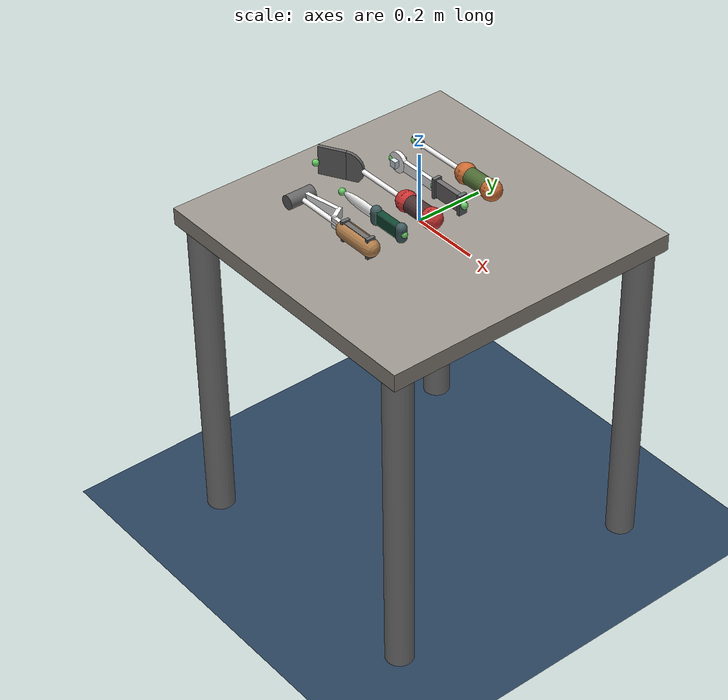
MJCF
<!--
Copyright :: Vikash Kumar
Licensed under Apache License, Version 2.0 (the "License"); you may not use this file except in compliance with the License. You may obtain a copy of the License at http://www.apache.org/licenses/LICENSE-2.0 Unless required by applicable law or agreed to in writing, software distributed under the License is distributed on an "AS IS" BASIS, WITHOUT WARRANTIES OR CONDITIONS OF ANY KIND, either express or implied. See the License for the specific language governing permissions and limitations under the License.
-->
<mujoco model='ADROIT-knife(v1.5)'>

    <default>
        <default class="board">
            <geom type="box" material="MatWood" />
            <general user="0 1 0.03 0.0939711 0.513477 0.0358776 1.23598 8.40409 0.485031 6.04244 1.02187 0.175297 0.121642 0 0 0" />
        </default>
    </default>

    <!-- ======= WORLD ======= -->
    <worldbody>
        <light directional='false' castshadow='false' diffuse='.7 .7 .7' specular='0.03 0.03 0.03' pos='-1 -1.0 4.0' dir='1 1.0 -4'/>
        <geom name='ground' size="1.5 1.5 0.25" pos="0 0 -1" type="plane" contype="1" conaffinity="0" material="groundplane" />
        <camera name="fixed" pos="0 -0.7 0.7" quat="0.92388 0.382683 0 0" />
        <!-- Camera for the VIL paper -->
        <camera name="vil_camera" pos="0 -1.2 1.2" quat="0.92388 0.382683 0 0" />
        <camera name="left_cross" pos="-0.8 -0.6 0.8" euler="0.785 -0.785 -0.49" />
        <camera name="right_cross" pos="-0.8 0.6 0.8" euler="-0.785 -0.785 3.53" />

        <!-- ======= TABLE ======= -->
        <body name="table">
            <!-- Plane has better contacts -->
            <geom size="0.45 0.45 0.025" pos="0 0 -0.025" type="box" material="tablecube" />
            <geom size="0.04 0.5" pos="0.4 0.4 -0.501" quat="0 1 0 0" type="cylinder" contype="0" conaffinity="0" />
            <geom size="0.04 0.5" pos="-0.4 0.4 -0.501" quat="0 1 0 0" type="cylinder" contype="0" conaffinity="0" />
            <geom size="0.04 0.5" pos="0.4 -0.4 -0.501" quat="0 1 0 0" type="cylinder" contype="0" conaffinity="0" />
            <geom size="0.04 0.5" pos="-0.4 -0.4 -0.501" quat="0 1 0 0" type="cylinder" contype="0" conaffinity="0" />
        </body>

        <!-- ======= MOCAP ======= -->

        <!-- ======= HAND ======= -->
        <body name="forearm" pos="0.9 -0.18 0.2" euler="-1.57 -1.57 3.14">
            <inertial pos="0.001 -0.002 0.29" quat="0.982037 -0.0160006 0 -0.188007" mass="4" diaginertia="0.01 0.01 0.0075" />
            <joint name="ARTx" pos="0 0 0" axis="1 0 0" type="slide" range="-0.25 0.25" damping="20" />

            <!-- ======= Adroit ======= -->
        </body>

        <!-- ======= DESTINATION ======= -->

        <!-- Knife -->
        <body pos="0 -0.1 0.035" quat="0.707388 0.706825 0 0" name='knife'>
            <include file="knife.xml"/>
        </body>

        <!-- Spatuala -->
        <body pos="0 0 0.035" quat="0.707388 0.706825 0 0" name='spatula'>
            <include file="spatula.xml"/>
        </body>

        <!-- Ratchet -->
        <body pos="0 0.1 0.035" quat="0.707388 0.706825 0 0" name='ratchet'>
            <include file="ratchet.xml"/>
        </body>

        <!-- screw driver -->
        <body pos="0 0.2 0.035" quat="0.707388 0.706825 0 0" name='screwDriver'>
            <include file="screwDriver.xml"/>
        </body>

        <!-- turner -->
        <body pos="0 -0.2 0.035" quat="0.707388 0.706825 0 0" name='turner'>
            <include file="turner.xml"/>
        </body>

        <!-- ======= Hammer ======= -->
        <body name="hammer" pos="0 -0.2 0.035" quat="0.707388 0.706825 0 0">
            <geom name="handle" size="0.025 0.05" quat="0.707388 0 0.706825 0" type="capsule" condim="4" material="MatWood" />
            <geom name="neck" size="0.007 0.085" pos="-0.14 0 0" quat="0.707388 0 0.706825 0" type="capsule" condim="4" rgba="1 1 1 1" />
            <geom name="head" size="0.02 0.04" pos="-0.24 0 0" type="cylinder" condim="4" rgba="0.4 0.4 0.4 1" />
        </body>

        <!-- pan -->

    </worldbody>

    <actuator>
        <general name="A_ARTx" joint="ARTx" ctrlrange="-0.25 0.25" biastype="affine" gainprm="500 0 0" biasprm="0 -200 0" />
    </actuator>
    <include file='MIX_env_assets.xml'/>
</mujoco>

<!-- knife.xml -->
<mujocoinclude>
        <!-- ======= Knife ======= -->
        <inertial pos="-0.11025 0 0" quat="0.50001 0.49999 0.49999 0.50001" mass="0.253442" diaginertia="0.00349644 0.00345287 8.947e-05"/>
        <site name="tool" pos="-0.19 0 0" size="0.01" group="4" rgba="0.4 0.8 0.4 1" />
        <geom name="k_handle" size="0.0105 0.018 0.053" quat="0.707388 0 0.706825 0" type="box" condim="4" rgba="0.06 0.28 0.2 1"/>
        <geom name="k_handleT" size="0.0155 0.013" pos="-.05 0 0" euler="1.57 0 0" type="capsule" condim="4" rgba="0.25 0.36 0.37 1"/>
        <geom name="k_handleB" size="0.0155 0.013" pos=".05 0 0" euler="1.57 0 0" type="capsule" condim="4" rgba="0.25 0.36 0.37 1"/>

        <geom name="k_neck" size="0.009 0.018 0.083" pos="-0.10 0 0" quat="0.707388 0 0.706825 0" type="ellipsoid" condim="4" rgba="1 1 1 1" />
        <site name="keypt1" pos="-0.19 0 0" size="0.01" rgba="0.4 0.8 0.4 1" />
        <site name="keypt2" pos="-0.06 0 0" size="0.01" rgba="0.4 0.8 0.4 1" />
        <site name="keypt3" pos="0.06 0 0" size="0.01" rgba="0.4 0.8 0.4 1" />
</mujocoinclude>

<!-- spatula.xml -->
<mujocoinclude>
        <!-- ======= Spatula ======= -->
        <inertial pos="-0.11025 0 0" quat="0.50001 0.49999 0.49999 0.50001" mass="0.253442" diaginertia="0.00349644 0.00345287 8.947e-05"/>
        <site name="tool" pos="-0.34 0 0.07" size="0.01" group="4" rgba="0.4 0.8 0.4 1" />
        <geom name="s_handle" size="0.025 0.05" quat="0.707388 0 0.706825 0" type="capsule" condim="4" rgba="0.3 0.2 0.2 1"/>
        <geom name="s_handleB" size="0.030 0.0005" pos=".05 0 0" quat="0.707388 0 0.706825 0" type="capsule" condim="4" rgba="0.8 0.2 0.2 1"/>
        <geom name="s_handleT" size="0.030 0.0005" pos="-.05 0 0" quat="0.707388 0 0.706825 0" type="capsule" condim="4" rgba="0.8 0.2 0.2 1"/>

        <geom name="s_neck" size="0.007 0.085" pos="-0.14 0 0" quat="0.707388 0 0.706825 0" type="capsule" condim="4" rgba="1 1 1 1" />
        <geom name="s_head" size="0.05 0.005" pos="-0.27 0 .022" type="cylinder" condim="4" rgba="0.4 0.4 0.4 1" euler="0 .5 0"/>
        <geom name="s_heahB" size="0.04 0.05 0.0052" pos="-0.305 0 .041" type="box" condim="4" rgba="0.4 0.4 0.4 1" euler="0 .5 0"/>
        <site name="keypt1" pos="-0.34 0 0.07" size="0.01" rgba="0.4 0.8 0.4 1" />
        <site name="keypt2" pos="-0.07 0 0" size="0.01" rgba="0.4 0.8 0.4 1" />
        <site name="keypt3" pos="0.06 0 0" size="0.01" rgba="0.4 0.8 0.4 1" />
</mujocoinclude>

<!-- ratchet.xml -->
<mujocoinclude>
    <inertial pos="-0.11025 0 0" quat="0.50001 0.49999 0.49999 0.50001" mass="0.253442" diaginertia="0.00349644 0.00345287 8.947e-05"/>
    <site name="tool" pos="-0.23 0 0" size="0.01" group="4" rgba="0.4 0.8 0.4 1" />
    <geom name="r_handle" size="0.0075 0.025 0.05" quat="0.707388 0 0.706825 0" type="box" condim="4" rgba="0.43 0.42 0.42 1"/>
    <geom name="r_handleB" size="0.0125 0.030 0.005" pos=".05 0 0" quat="0.707388 0 0.706825 0" type="box" condim="4" rgba="0.4 0.42 0.42 1"/>
    <geom name="r_handleT" size="0.0125 0.030 0.005" pos="-.05 0 0" quat="0.707388 0 0.706825 0" type="box" condim="4" rgba="0.4 0.42 0.42 1"/>

    <geom name="r_neck" size="0.006 0.015 0.085" pos="-0.14 0 0" quat="0.707388 0 0.706825 0" type="box" condim="4" rgba="1 1 1 1" />
    <geom name="r_head" size="0.03 0.006" pos="-0.205 0 0" type="cylinder" condim="4" rgba="1 1 1 1" euler="0 0 0"/>
    <geom name="r_head2" size="0.01 0.01 0.02" pos="-0.205 0 0" type="box" condim="4" rgba=".84 .89 .92 1" euler="0 0 0"/>
    <site name="keypt1" pos="-0.23 0 0" size="0.01" rgba="0.4 0.8 0.4 1" />
    <site name="keypt2" pos="-0.06 0 0" size="0.01" rgba="0.4 0.8 0.4 1" />
    <site name="keypt3" pos="0.06 0 0" size="0.01" rgba="0.4 0.8 0.4 1" />
</mujocoinclude>

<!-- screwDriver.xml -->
<mujocoinclude>
        <inertial pos="-0.11025 0 0" quat="0.50001 0.49999 0.49999 0.50001" mass="0.253442" diaginertia="0.00349644 0.00345287 8.947e-05"/>
        <site name="tool" pos="-0.26 0 0.0" size="0.01" group="4" rgba="0.4 0.8 0.4 1" />
        <geom name="sd_handle" size="0.025 0.05" quat="0.707388 0 0.706825 0" type="capsule" condim="4" rgba="0.3 0.42 0.2 1"/>
        <geom name="sd_handleB" size="0.030 0.0005" pos=".05 0 0" quat="0.707388 0 0.706825 0" type="capsule" condim="4" rgba="0.8 0.42 0.2 1"/>
        <geom name="sd_handleT" size="0.030 0.0005" pos="-.05 0 0" quat="0.707388 0 0.706825 0" type="capsule" condim="4" rgba="0.8 0.42 0.2 1"/>

        <geom name="sd_neck" size="0.007 0.085" pos="-0.14 0 0" quat="0.707388 0 0.706825 0" type="capsule" condim="4" rgba="1 1 1 1" />
        <geom name="sd_head" size="0.02 0.01 0.005" pos="-0.245 0 0" type="box" condim="4" rgba="0.4 0.4 0.4 1" euler="0 0 0"/>
        <site name="keypt1" pos="-0.26 0 0.0" size="0.01" rgba="0.4 0.8 0.4 1" />
        <site name="keypt2" pos="-0.06 0 0" size="0.01" rgba="0.4 0.8 0.4 1" />
        <site name="keypt3" pos="0.06 0 0" size="0.01" rgba="0.4 0.8 0.4 1" />
</mujocoinclude>

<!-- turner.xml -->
<mujocoinclude>
        <inertial pos="-0.11025 0 0" quat="0.50001 0.49999 0.49999 0.50001" mass="0.253442" diaginertia="0.00349644 0.00345287 8.947e-05"/>
        <site name="tool" pos="-0.23 0 -0.01" size="0.01" group="4" rgba="0.4 0.8 0.4 1" />
        <geom name="t_handle" size="0.0075 0.025 0.05" quat="0.707388 0 0.706825 0" type="box" condim="4" rgba="0.43 0.42 0.42 1"/>
        <geom name="t_handleB" size="0.0125 0.030 0.005" pos=".05 0 0" quat="0.707388 0 0.706825 0" type="box" condim="4" rgba="0.4 0.42 0.42 1"/>
        <geom name="t_handleT" size="0.0125 0.030 0.005" pos="-.05 0 0" quat="0.707388 0 0.706825 0" type="box" condim="4" rgba="0.4 0.42 0.42 1"/>

        <geom name="t_neckL" size="0.006 0.015 0.025" pos="-0.075 0 0" quat="0.707388 0 0.706825 0" type="box" condim="4" rgba="1 1 1 1" />
        <geom name="t_neck" size="0.006 0.015 0.025" pos="-0.108 0 -.018" euler="0 .57 0" type="box" condim="4" rgba="1 1 1 1" />
        <geom name="t_head" size="0.006 0.015 0.055" pos="-0.175 0 -.0225" euler="0 -1.4 0" type="box" condim="4" rgba="1 1 1 1" />
        <site name="keypt1" pos="-0.23 0 0.0" size="0.01" rgba="0.4 0.8 0.4 1" />
        <site name="keypt2" pos="-0.06 0 0" size="0.01" rgba="0.4 0.8 0.4 1" />
        <site name="keypt3" pos="0.06 0 0" size="0.01" rgba="0.4 0.8 0.4 1" />
</mujocoinclude>

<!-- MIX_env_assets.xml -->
<mujocoinclude>
 	<compiler angle="radian" meshdir='../../../sims/Adroit/resources/meshes/' texturedir='../../../sims/Adroit/resources/textures/' />
    <option apirate="200" iterations="20" noslip_iterations="20"/>
    <size njmax="500" nconmax="100" nstack="600000" nuser_body="9" nuser_jnt="1" nuser_site="1" nuser_tendon="1" nuser_actuator="16" nuser_sensor="1" />
    <visual>
        <global offwidth="3024" offheight="1680" />
        <quality shadowsize="4096" offsamples="8" />
        <map force="0.1" fogend="5" />
    </visual>
    <default class="main">
        <mesh scale="0.001 0.001 0.001" />
        <joint limited="true" margin="0.01" armature="0.001" damping="0.05" frictionloss="0.001" />
        <geom friction="1 0.5 0.01" margin="0.0005" />
        <site size="0.005 0 0" rgba="0.4 0.9 0.4 1" />
        <tendon limited="true" />
        <general ctrllimited="true" ctrlrange="-1 1" user="0 1 0.03 0.0939711 0.513477 0.0358776 1.23598 8.40409 0.485031 6.04244 1.02187 0.175297 0.121642 0 0 0" />
        <default class="D_Touch">
            <site size="0.009 0.004 0.013" group="4" type="box" rgba="0.8 0.8 0.8 0.15" />
            <general user="0 1 0.03 0.0939711 0.513477 0.0358776 1.23598 8.40409 0.485031 6.04244 1.02187 0.175297 0.121642 0 0 0" />
        </default>
        <default class="DC_Hand">
            <geom conaffinity="0" group="4" material="MatColl" />
            <general user="0 1 0.03 0.0939711 0.513477 0.0358776 1.23598 8.40409 0.485031 6.04244 1.02187 0.175297 0.121642 0 0 0" />
        </default>
        <default class="D_Vizual">
            <geom type="mesh" contype="0" conaffinity="0" group="1" material="MatViz" />
            <general user="0 1 0.03 0.0939711 0.513477 0.0358776 1.23598 8.40409 0.485031 6.04244 1.02187 0.175297 0.121642 0 0 0" />
        </default>
        <default class="free">
            <joint type="free" limited="false" armature="0" damping="0" />
            <general user="0 1 0.03 0.0939711 0.513477 0.0358776 1.23598 8.40409 0.485031 6.04244 1.02187 0.175297 0.121642 0 0 0" />
        </default>
    </default>
    <asset>
        <texture type="cube" name="texgeom" builtin="flat" mark="cross" rgb1="0.3 0.6 0.5" rgb2="0.3 0.6 0.5" width="127" height="762" />
        <texture type="cube" name="wood" file="wood.png" />
        <texture type="2d" name="wood2d" file="wood.png" />
        <texture type="cube" name="square" file="square.png" />
        <texture type="cube" name="foil" file="silverRaw.png" />
        <texture type="cube" name="woodb" file="woodb.png" />
        <texture type="2d" name="groundplane" builtin="checker" rgb1="0.2 0.3 0.4" rgb2="0.1 0.2 0.3" width="100" height="100" />
        <texture type="2d" name="marble2d" file="marble.png" />
        <texture type="cube" name="marblecube" file="marble.png" />
        <material name="MatColl" specular="1" shininess="0.3" reflectance="0.5" rgba="0.4 0.5 0.6 1" />
        <material name="MatViz" specular="0.75" shininess="0.1" reflectance="0.5" rgba="0.9 0.7 0.5 1" />
        <material name="MatGnd" specular="0.3" shininess="0.3" reflectance="0.3" rgba="0.5 0.55 0.5 1" />
        <material name="object" texture="texgeom" />
        <material name="groundplane" texture="groundplane" texrepeat="10 10" />
        <material name="table2d" texture="marble2d" reflectance="0.3" rgba="0.8 0.8 0.8 1" />
        <material name="tablecube" texture="marblecube" rgba="0.8 0.8 0.8 1" />
        <material name="MatFoil" texture="foil" specular="1" shininess="0.3" rgba="0.9 0.9 0.9 1" />
        <material name="MatPlane" specular="0.3" shininess="0.3" rgba="0.3 0.3 0.2 1" />
        <material name="MatWood" texture="wood" texrepeat="3 3" specular="0.4" shininess="0.1" />
        <material name="MatSquare" texture="square" specular="1" shininess="0.6" rgba="0.8 0.8 0.8 1" />
        <material name="MatWoodR" texture="wood" specular="1" shininess="0.3" rgba="1 0.5 0.5 1" />
        <material name="MatWoodG" texture="wood" specular="1" shininess="0.3" rgba="0.2 1 0.2 1" />
        <material name="MatWoodB" texture="woodb" specular="1" shininess="0.3" />
        <mesh name="forearm_simple" file="forearm_simple.stl" scale="1 1 1"/>
        <mesh name="wrist" file="wrist.stl" />
        <mesh name="palm" file="palm.stl" />
        <mesh name="lfmetacarpal" file="lfmetacarpal.stl" />
        <mesh name="knuckle" file="knuckle.stl" />
        <mesh name="F3" file="F3.stl" />
        <mesh name="F2" file="F2.stl" />
        <mesh name="F1" file="F1.stl" />
        <mesh name="TH3_z" file="TH3_z.stl" />
        <mesh name="TH2_z" file="TH2_z.stl" />
        <mesh name="TH1_z" file="TH1_z.stl" />
    </asset>

    <sensor>

        <!-- ======= Touch Sensors ======= -->

    </sensor>

 </mujocoinclude>
